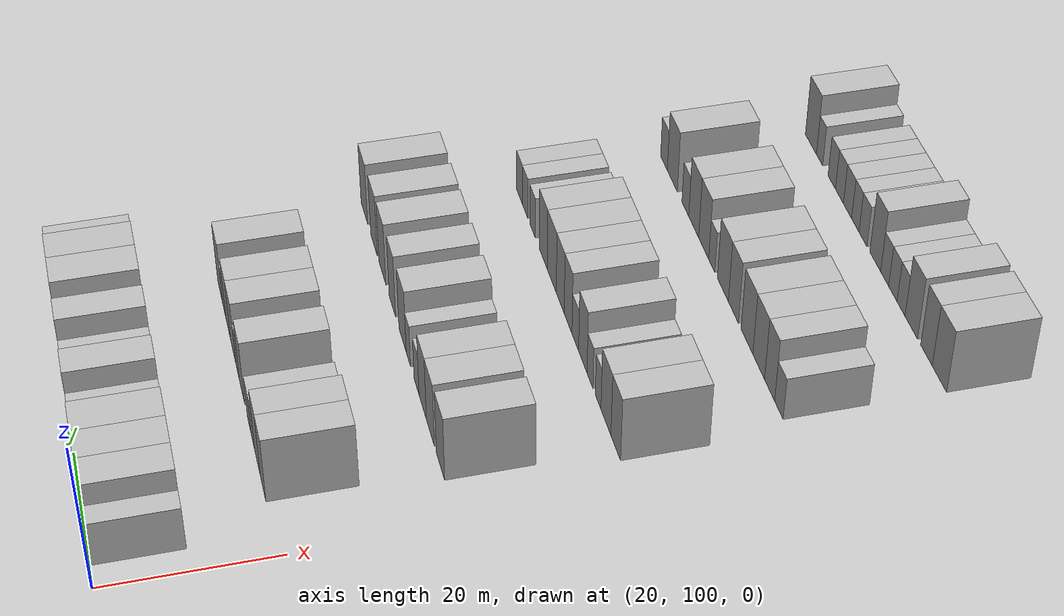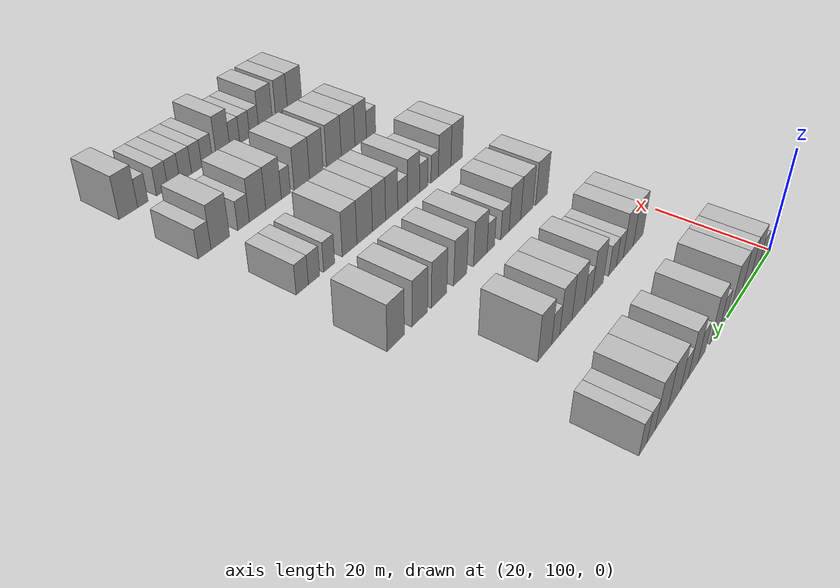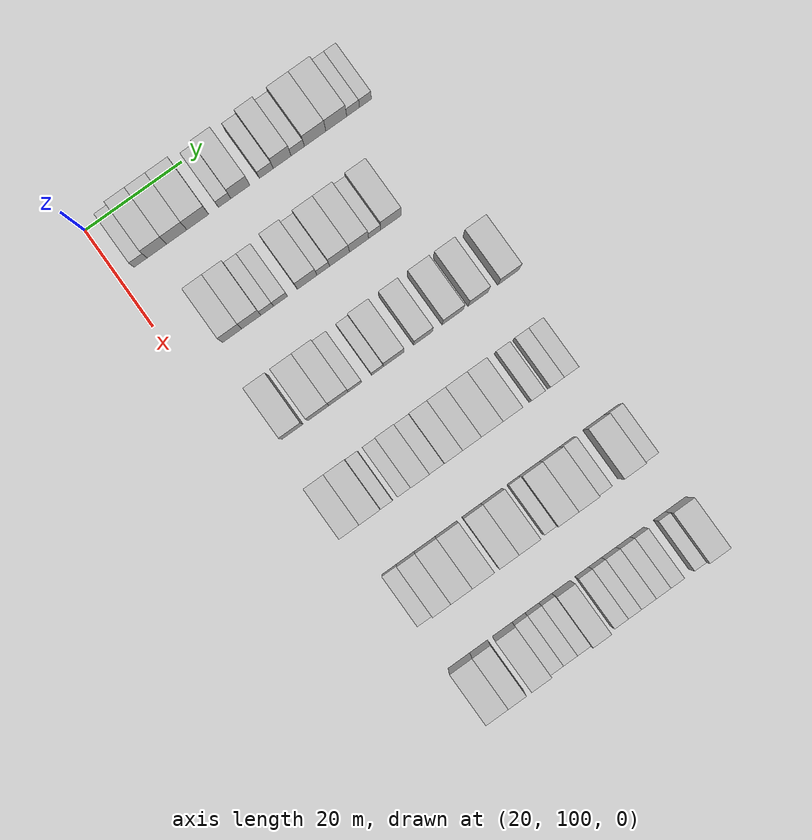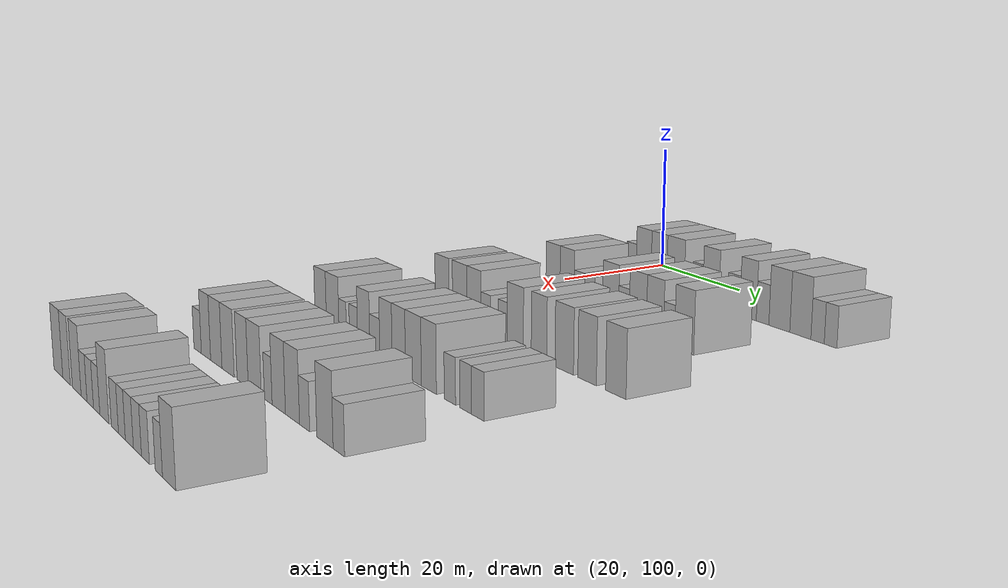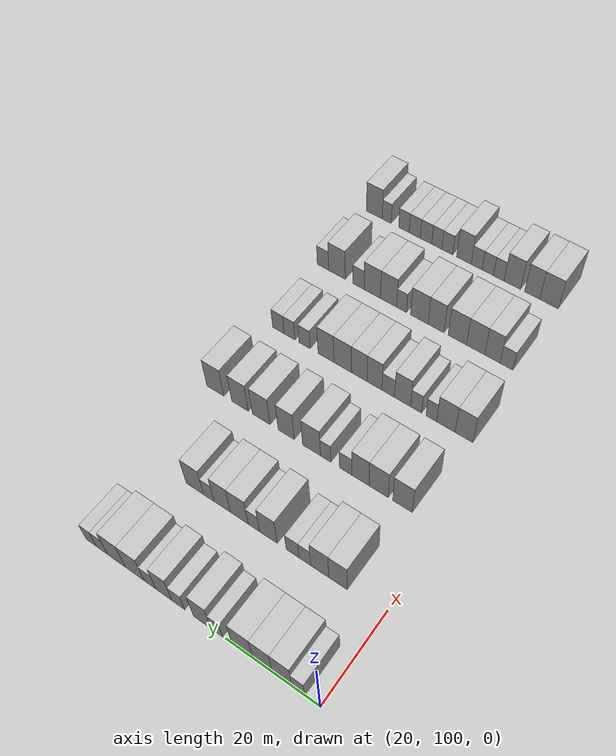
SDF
<sdf version="1.6">
 <world name="default">
  <model name="building_102">
   <static>1</static>
   <pose>25.0000 104.5678 0 0.000000 0.000000 0.000000</pose>
   <link name="link">
    <pose>0 0 3.00 0 0 0</pose>
    <collision name="collision"><geometry><box><size>10.0000 2.6854 6.0000</size></box></geometry></collision>
    <visual name="visual">
     <cast_shadows>0</cast_shadows>
     <geometry><box><size>10.0000 2.6854 6.0000</size></box></geometry>
     <material>
      <script>
       <uri>model://HANNAS_wall/materials/scripts</uri>
       <uri>model://HANNAS_wall/materials/textures</uri>
       <name>vrc/HANNAS_wall</name>
      </script>
     </material>
    </visual>
   </link>
  </model>
  <model name="building_103">
   <static>1</static>
   <pose>25.0000 107.9273 0 0.000000 0.000000 0.000000</pose>
   <link name="link">
    <pose>0 0 4.50 0 0 0</pose>
    <collision name="collision"><geometry><box><size>10.0000 4.0334 9.0000</size></box></geometry></collision>
    <visual name="visual">
     <cast_shadows>0</cast_shadows>
     <geometry><box><size>10.0000 4.0334 9.0000</size></box></geometry>
     <material>
      <script>
       <uri>model://HANNAS_wall/materials/scripts</uri>
       <uri>model://HANNAS_wall/materials/textures</uri>
       <name>vrc/HANNAS_wall</name>
      </script>
     </material>
    </visual>
   </link>
  </model>
  <model name="building_104">
   <static>1</static>
   <pose>25.0000 112.0118 0 0.000000 0.000000 0.000000</pose>
   <link name="link">
    <pose>0 0 4.50 0 0 0</pose>
    <collision name="collision"><geometry><box><size>10.0000 4.1357 9.0000</size></box></geometry></collision>
    <visual name="visual">
     <cast_shadows>0</cast_shadows>
     <geometry><box><size>10.0000 4.1357 9.0000</size></box></geometry>
     <material>
      <script>
       <uri>model://HANNAS_wall/materials/scripts</uri>
       <uri>model://HANNAS_wall/materials/textures</uri>
       <name>vrc/HANNAS_wall</name>
      </script>
     </material>
    </visual>
   </link>
  </model>
  <model name="building_105">
   <static>1</static>
   <pose>25.0000 116.3245 0 0.000000 0.000000 0.000000</pose>
   <link name="link">
    <pose>0 0 4.50 0 0 0</pose>
    <collision name="collision"><geometry><box><size>10.0000 4.4896 9.0000</size></box></geometry></collision>
    <visual name="visual">
     <cast_shadows>0</cast_shadows>
     <geometry><box><size>10.0000 4.4896 9.0000</size></box></geometry>
     <material>
      <script>
       <uri>model://HANNAS_wall/materials/scripts</uri>
       <uri>model://HANNAS_wall/materials/textures</uri>
       <name>vrc/HANNAS_wall</name>
      </script>
     </material>
    </visual>
   </link>
  </model>
  <model name="building_106">
   <static>1</static>
   <pose>25.0000 121.8546 0 0.000000 0.000000 0.000000</pose>
   <link name="link">
    <pose>0 0 3.00 0 0 0</pose>
    <collision name="collision"><geometry><box><size>10.0000 2.5707 6.0000</size></box></geometry></collision>
    <visual name="visual">
     <cast_shadows>0</cast_shadows>
     <geometry><box><size>10.0000 2.5707 6.0000</size></box></geometry>
     <material>
      <script>
       <uri>model://HANNAS_wall/materials/scripts</uri>
       <uri>model://HANNAS_wall/materials/textures</uri>
       <name>vrc/HANNAS_wall</name>
      </script>
     </material>
    </visual>
   </link>
  </model>
  <model name="building_107">
   <static>1</static>
   <pose>25.0000 125.0823 0 0.000000 0.000000 0.000000</pose>
   <link name="link">
    <pose>0 0 4.50 0 0 0</pose>
    <collision name="collision"><geometry><box><size>10.0000 3.8846 9.0000</size></box></geometry></collision>
    <visual name="visual">
     <cast_shadows>0</cast_shadows>
     <geometry><box><size>10.0000 3.8846 9.0000</size></box></geometry>
     <material>
      <script>
       <uri>model://HANNAS_wall/materials/scripts</uri>
       <uri>model://HANNAS_wall/materials/textures</uri>
       <name>vrc/HANNAS_wall</name>
      </script>
     </material>
    </visual>
   </link>
  </model>
  <model name="building_108">
   <static>1</static>
   <pose>25.0000 130.4456 0 0.000000 0.000000 0.000000</pose>
   <link name="link">
    <pose>0 0 3.00 0 0 0</pose>
    <collision name="collision"><geometry><box><size>10.0000 2.8421 6.0000</size></box></geometry></collision>
    <visual name="visual">
     <cast_shadows>0</cast_shadows>
     <geometry><box><size>10.0000 2.8421 6.0000</size></box></geometry>
     <material>
      <script>
       <uri>model://HANNAS_wall/materials/scripts</uri>
       <uri>model://HANNAS_wall/materials/textures</uri>
       <name>vrc/HANNAS_wall</name>
      </script>
     </material>
    </visual>
   </link>
  </model>
  <model name="building_109">
   <static>1</static>
   <pose>25.0000 133.7133 0 0.000000 0.000000 0.000000</pose>
   <link name="link">
    <pose>0 0 4.50 0 0 0</pose>
    <collision name="collision"><geometry><box><size>10.0000 3.6931 9.0000</size></box></geometry></collision>
    <visual name="visual">
     <cast_shadows>0</cast_shadows>
     <geometry><box><size>10.0000 3.6931 9.0000</size></box></geometry>
     <material>
      <script>
       <uri>model://HANNAS_wall/materials/scripts</uri>
       <uri>model://HANNAS_wall/materials/textures</uri>
       <name>vrc/HANNAS_wall</name>
      </script>
     </material>
    </visual>
   </link>
  </model>
  <model name="building_110">
   <static>1</static>
   <pose>25.0000 136.9360 0 0.000000 0.000000 0.000000</pose>
   <link name="link">
    <pose>0 0 3.00 0 0 0</pose>
    <collision name="collision"><geometry><box><size>10.0000 2.7523 6.0000</size></box></geometry></collision>
    <visual name="visual">
     <cast_shadows>0</cast_shadows>
     <geometry><box><size>10.0000 2.7523 6.0000</size></box></geometry>
     <material>
      <script>
       <uri>model://HANNAS_wall/materials/scripts</uri>
       <uri>model://HANNAS_wall/materials/textures</uri>
       <name>vrc/HANNAS_wall</name>
      </script>
     </material>
    </visual>
   </link>
  </model>
  <model name="building_111">
   <static>1</static>
   <pose>25.0000 140.5311 0 0.000000 0.000000 0.000000</pose>
   <link name="link">
    <pose>0 0 4.50 0 0 0</pose>
    <collision name="collision"><geometry><box><size>10.0000 4.4381 9.0000</size></box></geometry></collision>
    <visual name="visual">
     <cast_shadows>0</cast_shadows>
     <geometry><box><size>10.0000 4.4381 9.0000</size></box></geometry>
     <material>
      <script>
       <uri>model://HANNAS_wall/materials/scripts</uri>
       <uri>model://HANNAS_wall/materials/textures</uri>
       <name>vrc/HANNAS_wall</name>
      </script>
     </material>
    </visual>
   </link>
  </model>
  <model name="building_112">
   <static>1</static>
   <pose>25.0000 144.9060 0 0.000000 0.000000 0.000000</pose>
   <link name="link">
    <pose>0 0 4.50 0 0 0</pose>
    <collision name="collision"><geometry><box><size>10.0000 4.3118 9.0000</size></box></geometry></collision>
    <visual name="visual">
     <cast_shadows>0</cast_shadows>
     <geometry><box><size>10.0000 4.3118 9.0000</size></box></geometry>
     <material>
      <script>
       <uri>model://HANNAS_wall/materials/scripts</uri>
       <uri>model://HANNAS_wall/materials/textures</uri>
       <name>vrc/HANNAS_wall</name>
      </script>
     </material>
    </visual>
   </link>
  </model>
  <model name="building_113">
   <static>1</static>
   <pose>25.0000 148.3867 0 0.000000 0.000000 0.000000</pose>
   <link name="link">
    <pose>0 0 3.00 0 0 0</pose>
    <collision name="collision"><geometry><box><size>10.0000 2.6495 6.0000</size></box></geometry></collision>
    <visual name="visual">
     <cast_shadows>0</cast_shadows>
     <geometry><box><size>10.0000 2.6495 6.0000</size></box></geometry>
     <material>
      <script>
       <uri>model://HANNAS_wall/materials/scripts</uri>
       <uri>model://HANNAS_wall/materials/textures</uri>
       <name>vrc/HANNAS_wall</name>
      </script>
     </material>
    </visual>
   </link>
  </model>
  <model name="building_114">
   <static>1</static>
   <pose>25.0000 150.9432 0 0.000000 0.000000 0.000000</pose>
   <link name="link">
    <pose>0 0 3.00 0 0 0</pose>
    <collision name="collision"><geometry><box><size>10.0000 2.4636 6.0000</size></box></geometry></collision>
    <visual name="visual">
     <cast_shadows>0</cast_shadows>
     <geometry><box><size>10.0000 2.4636 6.0000</size></box></geometry>
     <material>
      <script>
       <uri>model://HANNAS_wall/materials/scripts</uri>
       <uri>model://HANNAS_wall/materials/textures</uri>
       <name>vrc/HANNAS_wall</name>
      </script>
     </material>
    </visual>
   </link>
  </model>
  <model name="building_282">
   <static>1</static>
   <pose>44.0000 109.9652 0 0.000000 0.000000 0.000000</pose>
   <link name="link">
    <pose>0 0 4.50 0 0 0</pose>
    <collision name="collision"><geometry><box><size>10.0000 3.9697 9.0000</size></box></geometry></collision>
    <visual name="visual">
     <cast_shadows>0</cast_shadows>
     <geometry><box><size>10.0000 3.9697 9.0000</size></box></geometry>
     <material>
      <script>
       <uri>model://HANNAS_wall/materials/scripts</uri>
       <uri>model://HANNAS_wall/materials/textures</uri>
       <name>vrc/HANNAS_wall</name>
      </script>
     </material>
    </visual>
   </link>
  </model>
  <model name="building_283">
   <static>1</static>
   <pose>44.0000 113.9184 0 0.000000 0.000000 0.000000</pose>
   <link name="link">
    <pose>0 0 4.50 0 0 0</pose>
    <collision name="collision"><geometry><box><size>10.0000 3.9366 9.0000</size></box></geometry></collision>
    <visual name="visual">
     <cast_shadows>0</cast_shadows>
     <geometry><box><size>10.0000 3.9366 9.0000</size></box></geometry>
     <material>
      <script>
       <uri>model://HANNAS_wall/materials/scripts</uri>
       <uri>model://HANNAS_wall/materials/textures</uri>
       <name>vrc/HANNAS_wall</name>
      </script>
     </material>
    </visual>
   </link>
  </model>
  <model name="building_284">
   <static>1</static>
   <pose>44.0000 117.1694 0 0.000000 0.000000 0.000000</pose>
   <link name="link">
    <pose>0 0 3.00 0 0 0</pose>
    <collision name="collision"><geometry><box><size>10.0000 2.5653 6.0000</size></box></geometry></collision>
    <visual name="visual">
     <cast_shadows>0</cast_shadows>
     <geometry><box><size>10.0000 2.5653 6.0000</size></box></geometry>
     <material>
      <script>
       <uri>model://HANNAS_wall/materials/scripts</uri>
       <uri>model://HANNAS_wall/materials/textures</uri>
       <name>vrc/HANNAS_wall</name>
      </script>
     </material>
    </visual>
   </link>
  </model>
  <model name="building_285">
   <static>1</static>
   <pose>44.0000 119.8928 0 0.000000 0.000000 0.000000</pose>
   <link name="link">
    <pose>0 0 3.00 0 0 0</pose>
    <collision name="collision"><geometry><box><size>10.0000 2.8816 6.0000</size></box></geometry></collision>
    <visual name="visual">
     <cast_shadows>0</cast_shadows>
     <geometry><box><size>10.0000 2.8816 6.0000</size></box></geometry>
     <material>
      <script>
       <uri>model://HANNAS_wall/materials/scripts</uri>
       <uri>model://HANNAS_wall/materials/textures</uri>
       <name>vrc/HANNAS_wall</name>
      </script>
     </material>
    </visual>
   </link>
  </model>
  <model name="building_286">
   <static>1</static>
   <pose>44.0000 125.3479 0 0.000000 0.000000 0.000000</pose>
   <link name="link">
    <pose>0 0 4.50 0 0 0</pose>
    <collision name="collision"><geometry><box><size>10.0000 4.0286 9.0000</size></box></geometry></collision>
    <visual name="visual">
     <cast_shadows>0</cast_shadows>
     <geometry><box><size>10.0000 4.0286 9.0000</size></box></geometry>
     <material>
      <script>
       <uri>model://HANNAS_wall/materials/scripts</uri>
       <uri>model://HANNAS_wall/materials/textures</uri>
       <name>vrc/HANNAS_wall</name>
      </script>
     </material>
    </visual>
   </link>
  </model>
  <model name="building_287">
   <static>1</static>
   <pose>44.0000 128.6664 0 0.000000 0.000000 0.000000</pose>
   <link name="link">
    <pose>0 0 3.00 0 0 0</pose>
    <collision name="collision"><geometry><box><size>10.0000 2.6083 6.0000</size></box></geometry></collision>
    <visual name="visual">
     <cast_shadows>0</cast_shadows>
     <geometry><box><size>10.0000 2.6083 6.0000</size></box></geometry>
     <material>
      <script>
       <uri>model://HANNAS_wall/materials/scripts</uri>
       <uri>model://HANNAS_wall/materials/textures</uri>
       <name>vrc/HANNAS_wall</name>
      </script>
     </material>
    </visual>
   </link>
  </model>
  <model name="building_288">
   <static>1</static>
   <pose>44.0000 132.0211 0 0.000000 0.000000 0.000000</pose>
   <link name="link">
    <pose>0 0 4.50 0 0 0</pose>
    <collision name="collision"><geometry><box><size>10.0000 4.1012 9.0000</size></box></geometry></collision>
    <visual name="visual">
     <cast_shadows>0</cast_shadows>
     <geometry><box><size>10.0000 4.1012 9.0000</size></box></geometry>
     <material>
      <script>
       <uri>model://HANNAS_wall/materials/scripts</uri>
       <uri>model://HANNAS_wall/materials/textures</uri>
       <name>vrc/HANNAS_wall</name>
      </script>
     </material>
    </visual>
   </link>
  </model>
  <model name="building_289">
   <static>1</static>
   <pose>44.0000 136.0446 0 0.000000 0.000000 0.000000</pose>
   <link name="link">
    <pose>0 0 4.50 0 0 0</pose>
    <collision name="collision"><geometry><box><size>10.0000 3.9458 9.0000</size></box></geometry></collision>
    <visual name="visual">
     <cast_shadows>0</cast_shadows>
     <geometry><box><size>10.0000 3.9458 9.0000</size></box></geometry>
     <material>
      <script>
       <uri>model://HANNAS_wall/materials/scripts</uri>
       <uri>model://HANNAS_wall/materials/textures</uri>
       <name>vrc/HANNAS_wall</name>
      </script>
     </material>
    </visual>
   </link>
  </model>
  <model name="building_290">
   <static>1</static>
   <pose>44.0000 139.2685 0 0.000000 0.000000 0.000000</pose>
   <link name="link">
    <pose>0 0 3.00 0 0 0</pose>
    <collision name="collision"><geometry><box><size>10.0000 2.5020 6.0000</size></box></geometry></collision>
    <visual name="visual">
     <cast_shadows>0</cast_shadows>
     <geometry><box><size>10.0000 2.5020 6.0000</size></box></geometry>
     <material>
      <script>
       <uri>model://HANNAS_wall/materials/scripts</uri>
       <uri>model://HANNAS_wall/materials/textures</uri>
       <name>vrc/HANNAS_wall</name>
      </script>
     </material>
    </visual>
   </link>
  </model>
  <model name="building_291">
   <static>1</static>
   <pose>44.0000 142.6181 0 0.000000 0.000000 0.000000</pose>
   <link name="link">
    <pose>0 0 4.50 0 0 0</pose>
    <collision name="collision"><geometry><box><size>10.0000 4.1971 9.0000</size></box></geometry></collision>
    <visual name="visual">
     <cast_shadows>0</cast_shadows>
     <geometry><box><size>10.0000 4.1971 9.0000</size></box></geometry>
     <material>
      <script>
       <uri>model://HANNAS_wall/materials/scripts</uri>
       <uri>model://HANNAS_wall/materials/textures</uri>
       <name>vrc/HANNAS_wall</name>
      </script>
     </material>
    </visual>
   </link>
  </model>
  <model name="building_435">
   <static>1</static>
   <pose>63.0000 108.8402 0 0.000000 0.000000 0.000000</pose>
   <link name="link">
    <pose>0 0 4.50 0 0 0</pose>
    <collision name="collision"><geometry><box><size>10.0000 4.3191 9.0000</size></box></geometry></collision>
    <visual name="visual">
     <cast_shadows>0</cast_shadows>
     <geometry><box><size>10.0000 4.3191 9.0000</size></box></geometry>
     <material>
      <script>
       <uri>model://HANNAS_wall/materials/scripts</uri>
       <uri>model://HANNAS_wall/materials/textures</uri>
       <name>vrc/HANNAS_wall</name>
      </script>
     </material>
    </visual>
   </link>
  </model>
  <model name="building_436">
   <static>1</static>
   <pose>63.0000 114.1483 0 0.000000 0.000000 0.000000</pose>
   <link name="link">
    <pose>0 0 4.50 0 0 0</pose>
    <collision name="collision"><geometry><box><size>10.0000 4.2972 9.0000</size></box></geometry></collision>
    <visual name="visual">
     <cast_shadows>0</cast_shadows>
     <geometry><box><size>10.0000 4.2972 9.0000</size></box></geometry>
     <material>
      <script>
       <uri>model://HANNAS_wall/materials/scripts</uri>
       <uri>model://HANNAS_wall/materials/textures</uri>
       <name>vrc/HANNAS_wall</name>
      </script>
     </material>
    </visual>
   </link>
  </model>
  <model name="building_437">
   <static>1</static>
   <pose>63.0000 118.2784 0 0.000000 0.000000 0.000000</pose>
   <link name="link">
    <pose>0 0 4.50 0 0 0</pose>
    <collision name="collision"><geometry><box><size>10.0000 3.9630 9.0000</size></box></geometry></collision>
    <visual name="visual">
     <cast_shadows>0</cast_shadows>
     <geometry><box><size>10.0000 3.9630 9.0000</size></box></geometry>
     <material>
      <script>
       <uri>model://HANNAS_wall/materials/scripts</uri>
       <uri>model://HANNAS_wall/materials/textures</uri>
       <name>vrc/HANNAS_wall</name>
      </script>
     </material>
    </visual>
   </link>
  </model>
  <model name="building_438">
   <static>1</static>
   <pose>63.0000 121.6506 0 0.000000 0.000000 0.000000</pose>
   <link name="link">
    <pose>0 0 3.00 0 0 0</pose>
    <collision name="collision"><geometry><box><size>10.0000 2.7814 6.0000</size></box></geometry></collision>
    <visual name="visual">
     <cast_shadows>0</cast_shadows>
     <geometry><box><size>10.0000 2.7814 6.0000</size></box></geometry>
     <material>
      <script>
       <uri>model://HANNAS_wall/materials/scripts</uri>
       <uri>model://HANNAS_wall/materials/textures</uri>
       <name>vrc/HANNAS_wall</name>
      </script>
     </material>
    </visual>
   </link>
  </model>
  <model name="building_439">
   <static>1</static>
   <pose>63.0000 126.2602 0 0.000000 0.000000 0.000000</pose>
   <link name="link">
    <pose>0 0 3.00 0 0 0</pose>
    <collision name="collision"><geometry><box><size>10.0000 2.4378 6.0000</size></box></geometry></collision>
    <visual name="visual">
     <cast_shadows>0</cast_shadows>
     <geometry><box><size>10.0000 2.4378 6.0000</size></box></geometry>
     <material>
      <script>
       <uri>model://HANNAS_wall/materials/scripts</uri>
       <uri>model://HANNAS_wall/materials/textures</uri>
       <name>vrc/HANNAS_wall</name>
      </script>
     </material>
    </visual>
   </link>
  </model>
  <model name="building_440">
   <static>1</static>
   <pose>63.0000 129.5867 0 0.000000 0.000000 0.000000</pose>
   <link name="link">
    <pose>0 0 4.50 0 0 0</pose>
    <collision name="collision"><geometry><box><size>10.0000 4.2151 9.0000</size></box></geometry></collision>
    <visual name="visual">
     <cast_shadows>0</cast_shadows>
     <geometry><box><size>10.0000 4.2151 9.0000</size></box></geometry>
     <material>
      <script>
       <uri>model://HANNAS_wall/materials/scripts</uri>
       <uri>model://HANNAS_wall/materials/textures</uri>
       <name>vrc/HANNAS_wall</name>
      </script>
     </material>
    </visual>
   </link>
  </model>
  <model name="building_441">
   <static>1</static>
   <pose>63.0000 135.6236 0 0.000000 0.000000 0.000000</pose>
   <link name="link">
    <pose>0 0 4.50 0 0 0</pose>
    <collision name="collision"><geometry><box><size>10.0000 3.8587 9.0000</size></box></geometry></collision>
    <visual name="visual">
     <cast_shadows>0</cast_shadows>
     <geometry><box><size>10.0000 3.8587 9.0000</size></box></geometry>
     <material>
      <script>
       <uri>model://HANNAS_wall/materials/scripts</uri>
       <uri>model://HANNAS_wall/materials/textures</uri>
       <name>vrc/HANNAS_wall</name>
      </script>
     </material>
    </visual>
   </link>
  </model>
  <model name="building_442">
   <static>1</static>
   <pose>63.0000 141.7271 0 0.000000 0.000000 0.000000</pose>
   <link name="link">
    <pose>0 0 4.50 0 0 0</pose>
    <collision name="collision"><geometry><box><size>10.0000 4.3483 9.0000</size></box></geometry></collision>
    <visual name="visual">
     <cast_shadows>0</cast_shadows>
     <geometry><box><size>10.0000 4.3483 9.0000</size></box></geometry>
     <material>
      <script>
       <uri>model://HANNAS_wall/materials/scripts</uri>
       <uri>model://HANNAS_wall/materials/textures</uri>
       <name>vrc/HANNAS_wall</name>
      </script>
     </material>
    </visual>
   </link>
  </model>
  <model name="building_443">
   <static>1</static>
   <pose>63.0000 146.9768 0 0.000000 0.000000 0.000000</pose>
   <link name="link">
    <pose>0 0 4.50 0 0 0</pose>
    <collision name="collision"><geometry><box><size>10.0000 4.1511 9.0000</size></box></geometry></collision>
    <visual name="visual">
     <cast_shadows>0</cast_shadows>
     <geometry><box><size>10.0000 4.1511 9.0000</size></box></geometry>
     <material>
      <script>
       <uri>model://HANNAS_wall/materials/scripts</uri>
       <uri>model://HANNAS_wall/materials/textures</uri>
       <name>vrc/HANNAS_wall</name>
      </script>
     </material>
    </visual>
   </link>
  </model>
  <model name="building_444">
   <static>1</static>
   <pose>63.0000 153.2112 0 0.000000 0.000000 0.000000</pose>
   <link name="link">
    <pose>0 0 4.50 0 0 0</pose>
    <collision name="collision"><geometry><box><size>10.0000 4.3177 9.0000</size></box></geometry></collision>
    <visual name="visual">
     <cast_shadows>0</cast_shadows>
     <geometry><box><size>10.0000 4.3177 9.0000</size></box></geometry>
     <material>
      <script>
       <uri>model://HANNAS_wall/materials/scripts</uri>
       <uri>model://HANNAS_wall/materials/textures</uri>
       <name>vrc/HANNAS_wall</name>
      </script>
     </material>
    </visual>
   </link>
  </model>
  <model name="building_610">
   <static>1</static>
   <pose>82.0000 107.1392 0 0.000000 0.000000 0.000000</pose>
   <link name="link">
    <pose>0 0 4.50 0 0 0</pose>
    <collision name="collision"><geometry><box><size>10.0000 3.9858 9.0000</size></box></geometry></collision>
    <visual name="visual">
     <cast_shadows>0</cast_shadows>
     <geometry><box><size>10.0000 3.9858 9.0000</size></box></geometry>
     <material>
      <script>
       <uri>model://HANNAS_wall/materials/scripts</uri>
       <uri>model://HANNAS_wall/materials/textures</uri>
       <name>vrc/HANNAS_wall</name>
      </script>
     </material>
    </visual>
   </link>
  </model>
  <model name="building_611">
   <static>1</static>
   <pose>82.0000 111.2429 0 0.000000 0.000000 0.000000</pose>
   <link name="link">
    <pose>0 0 4.50 0 0 0</pose>
    <collision name="collision"><geometry><box><size>10.0000 4.2218 9.0000</size></box></geometry></collision>
    <visual name="visual">
     <cast_shadows>0</cast_shadows>
     <geometry><box><size>10.0000 4.2218 9.0000</size></box></geometry>
     <material>
      <script>
       <uri>model://HANNAS_wall/materials/scripts</uri>
       <uri>model://HANNAS_wall/materials/textures</uri>
       <name>vrc/HANNAS_wall</name>
      </script>
     </material>
    </visual>
   </link>
  </model>
  <model name="building_612">
   <static>1</static>
   <pose>82.0000 114.5690 0 0.000000 0.000000 0.000000</pose>
   <link name="link">
    <pose>0 0 3.00 0 0 0</pose>
    <collision name="collision"><geometry><box><size>10.0000 2.4304 6.0000</size></box></geometry></collision>
    <visual name="visual">
     <cast_shadows>0</cast_shadows>
     <geometry><box><size>10.0000 2.4304 6.0000</size></box></geometry>
     <material>
      <script>
       <uri>model://HANNAS_wall/materials/scripts</uri>
       <uri>model://HANNAS_wall/materials/textures</uri>
       <name>vrc/HANNAS_wall</name>
      </script>
     </material>
    </visual>
   </link>
  </model>
  <model name="building_613">
   <static>1</static>
   <pose>82.0000 118.0830 0 0.000000 0.000000 0.000000</pose>
   <link name="link">
    <pose>0 0 3.00 0 0 0</pose>
    <collision name="collision"><geometry><box><size>10.0000 2.5975 6.0000</size></box></geometry></collision>
    <visual name="visual">
     <cast_shadows>0</cast_shadows>
     <geometry><box><size>10.0000 2.5975 6.0000</size></box></geometry>
     <material>
      <script>
       <uri>model://HANNAS_wall/materials/scripts</uri>
       <uri>model://HANNAS_wall/materials/textures</uri>
       <name>vrc/HANNAS_wall</name>
      </script>
     </material>
    </visual>
   </link>
  </model>
  <model name="building_614">
   <static>1</static>
   <pose>82.0000 121.2739 0 0.000000 0.000000 0.000000</pose>
   <link name="link">
    <pose>0 0 4.50 0 0 0</pose>
    <collision name="collision"><geometry><box><size>10.0000 3.7844 9.0000</size></box></geometry></collision>
    <visual name="visual">
     <cast_shadows>0</cast_shadows>
     <geometry><box><size>10.0000 3.7844 9.0000</size></box></geometry>
     <material>
      <script>
       <uri>model://HANNAS_wall/materials/scripts</uri>
       <uri>model://HANNAS_wall/materials/textures</uri>
       <name>vrc/HANNAS_wall</name>
      </script>
     </material>
    </visual>
   </link>
  </model>
  <model name="building_615">
   <static>1</static>
   <pose>82.0000 124.6626 0 0.000000 0.000000 0.000000</pose>
   <link name="link">
    <pose>0 0 3.00 0 0 0</pose>
    <collision name="collision"><geometry><box><size>10.0000 2.9929 6.0000</size></box></geometry></collision>
    <visual name="visual">
     <cast_shadows>0</cast_shadows>
     <geometry><box><size>10.0000 2.9929 6.0000</size></box></geometry>
     <material>
      <script>
       <uri>model://HANNAS_wall/materials/scripts</uri>
       <uri>model://HANNAS_wall/materials/textures</uri>
       <name>vrc/HANNAS_wall</name>
      </script>
     </material>
    </visual>
   </link>
  </model>
  <model name="building_616">
   <static>1</static>
   <pose>82.0000 127.9609 0 0.000000 0.000000 0.000000</pose>
   <link name="link">
    <pose>0 0 4.50 0 0 0</pose>
    <collision name="collision"><geometry><box><size>10.0000 3.6039 9.0000</size></box></geometry></collision>
    <visual name="visual">
     <cast_shadows>0</cast_shadows>
     <geometry><box><size>10.0000 3.6039 9.0000</size></box></geometry>
     <material>
      <script>
       <uri>model://HANNAS_wall/materials/scripts</uri>
       <uri>model://HANNAS_wall/materials/textures</uri>
       <name>vrc/HANNAS_wall</name>
      </script>
     </material>
    </visual>
   </link>
  </model>
  <model name="building_617">
   <static>1</static>
   <pose>82.0000 131.6417 0 0.000000 0.000000 0.000000</pose>
   <link name="link">
    <pose>0 0 4.50 0 0 0</pose>
    <collision name="collision"><geometry><box><size>10.0000 3.7576 9.0000</size></box></geometry></collision>
    <visual name="visual">
     <cast_shadows>0</cast_shadows>
     <geometry><box><size>10.0000 3.7576 9.0000</size></box></geometry>
     <material>
      <script>
       <uri>model://HANNAS_wall/materials/scripts</uri>
       <uri>model://HANNAS_wall/materials/textures</uri>
       <name>vrc/HANNAS_wall</name>
      </script>
     </material>
    </visual>
   </link>
  </model>
  <model name="building_618">
   <static>1</static>
   <pose>82.0000 135.6814 0 0.000000 0.000000 0.000000</pose>
   <link name="link">
    <pose>0 0 4.50 0 0 0</pose>
    <collision name="collision"><geometry><box><size>10.0000 4.3218 9.0000</size></box></geometry></collision>
    <visual name="visual">
     <cast_shadows>0</cast_shadows>
     <geometry><box><size>10.0000 4.3218 9.0000</size></box></geometry>
     <material>
      <script>
       <uri>model://HANNAS_wall/materials/scripts</uri>
       <uri>model://HANNAS_wall/materials/textures</uri>
       <name>vrc/HANNAS_wall</name>
      </script>
     </material>
    </visual>
   </link>
  </model>
  <model name="building_619">
   <static>1</static>
   <pose>82.0000 139.8212 0 0.000000 0.000000 0.000000</pose>
   <link name="link">
    <pose>0 0 4.50 0 0 0</pose>
    <collision name="collision"><geometry><box><size>10.0000 3.9577 9.0000</size></box></geometry></collision>
    <visual name="visual">
     <cast_shadows>0</cast_shadows>
     <geometry><box><size>10.0000 3.9577 9.0000</size></box></geometry>
     <material>
      <script>
       <uri>model://HANNAS_wall/materials/scripts</uri>
       <uri>model://HANNAS_wall/materials/textures</uri>
       <name>vrc/HANNAS_wall</name>
      </script>
     </material>
    </visual>
   </link>
  </model>
  <model name="building_620">
   <static>1</static>
   <pose>82.0000 145.2170 0 0.000000 0.000000 0.000000</pose>
   <link name="link">
    <pose>0 0 3.00 0 0 0</pose>
    <collision name="collision"><geometry><box><size>10.0000 2.8338 6.0000</size></box></geometry></collision>
    <visual name="visual">
     <cast_shadows>0</cast_shadows>
     <geometry><box><size>10.0000 2.8338 6.0000</size></box></geometry>
     <material>
      <script>
       <uri>model://HANNAS_wall/materials/scripts</uri>
       <uri>model://HANNAS_wall/materials/textures</uri>
       <name>vrc/HANNAS_wall</name>
      </script>
     </material>
    </visual>
   </link>
  </model>
  <model name="building_621">
   <static>1</static>
   <pose>82.0000 149.0356 0 0.000000 0.000000 0.000000</pose>
   <link name="link">
    <pose>0 0 3.00 0 0 0</pose>
    <collision name="collision"><geometry><box><size>10.0000 2.8034 6.0000</size></box></geometry></collision>
    <visual name="visual">
     <cast_shadows>0</cast_shadows>
     <geometry><box><size>10.0000 2.8034 6.0000</size></box></geometry>
     <material>
      <script>
       <uri>model://HANNAS_wall/materials/scripts</uri>
       <uri>model://HANNAS_wall/materials/textures</uri>
       <name>vrc/HANNAS_wall</name>
      </script>
     </material>
    </visual>
   </link>
  </model>
  <model name="building_622">
   <static>1</static>
   <pose>82.0000 151.9226 0 0.000000 0.000000 0.000000</pose>
   <link name="link">
    <pose>0 0 3.00 0 0 0</pose>
    <collision name="collision"><geometry><box><size>10.0000 2.9707 6.0000</size></box></geometry></collision>
    <visual name="visual">
     <cast_shadows>0</cast_shadows>
     <geometry><box><size>10.0000 2.9707 6.0000</size></box></geometry>
     <material>
      <script>
       <uri>model://HANNAS_wall/materials/scripts</uri>
       <uri>model://HANNAS_wall/materials/textures</uri>
       <name>vrc/HANNAS_wall</name>
      </script>
     </material>
    </visual>
   </link>
  </model>
  <model name="building_787">
   <static>1</static>
   <pose>101.0000 108.6226 0 0.000000 0.000000 0.000000</pose>
   <link name="link">
    <pose>0 0 3.00 0 0 0</pose>
    <collision name="collision"><geometry><box><size>10.0000 2.9806 6.0000</size></box></geometry></collision>
    <visual name="visual">
     <cast_shadows>0</cast_shadows>
     <geometry><box><size>10.0000 2.9806 6.0000</size></box></geometry>
     <material>
      <script>
       <uri>model://HANNAS_wall/materials/scripts</uri>
       <uri>model://HANNAS_wall/materials/textures</uri>
       <name>vrc/HANNAS_wall</name>
      </script>
     </material>
    </visual>
   </link>
  </model>
  <model name="building_788">
   <static>1</static>
   <pose>101.0000 111.9260 0 0.000000 0.000000 0.000000</pose>
   <link name="link">
    <pose>0 0 4.50 0 0 0</pose>
    <collision name="collision"><geometry><box><size>10.0000 3.6262 9.0000</size></box></geometry></collision>
    <visual name="visual">
     <cast_shadows>0</cast_shadows>
     <geometry><box><size>10.0000 3.6262 9.0000</size></box></geometry>
     <material>
      <script>
       <uri>model://HANNAS_wall/materials/scripts</uri>
       <uri>model://HANNAS_wall/materials/textures</uri>
       <name>vrc/HANNAS_wall</name>
      </script>
     </material>
    </visual>
   </link>
  </model>
  <model name="building_789">
   <static>1</static>
   <pose>101.0000 115.8783 0 0.000000 0.000000 0.000000</pose>
   <link name="link">
    <pose>0 0 4.50 0 0 0</pose>
    <collision name="collision"><geometry><box><size>10.0000 4.2783 9.0000</size></box></geometry></collision>
    <visual name="visual">
     <cast_shadows>0</cast_shadows>
     <geometry><box><size>10.0000 4.2783 9.0000</size></box></geometry>
     <material>
      <script>
       <uri>model://HANNAS_wall/materials/scripts</uri>
       <uri>model://HANNAS_wall/materials/textures</uri>
       <name>vrc/HANNAS_wall</name>
      </script>
     </material>
    </visual>
   </link>
  </model>
  <model name="building_790">
   <static>1</static>
   <pose>101.0000 120.2354 0 0.000000 0.000000 0.000000</pose>
   <link name="link">
    <pose>0 0 4.50 0 0 0</pose>
    <collision name="collision"><geometry><box><size>10.0000 4.4359 9.0000</size></box></geometry></collision>
    <visual name="visual">
     <cast_shadows>0</cast_shadows>
     <geometry><box><size>10.0000 4.4359 9.0000</size></box></geometry>
     <material>
      <script>
       <uri>model://HANNAS_wall/materials/scripts</uri>
       <uri>model://HANNAS_wall/materials/textures</uri>
       <name>vrc/HANNAS_wall</name>
      </script>
     </material>
    </visual>
   </link>
  </model>
  <model name="building_791">
   <static>1</static>
   <pose>101.0000 125.3936 0 0.000000 0.000000 0.000000</pose>
   <link name="link">
    <pose>0 0 4.50 0 0 0</pose>
    <collision name="collision"><geometry><box><size>10.0000 3.8805 9.0000</size></box></geometry></collision>
    <visual name="visual">
     <cast_shadows>0</cast_shadows>
     <geometry><box><size>10.0000 3.8805 9.0000</size></box></geometry>
     <material>
      <script>
       <uri>model://HANNAS_wall/materials/scripts</uri>
       <uri>model://HANNAS_wall/materials/textures</uri>
       <name>vrc/HANNAS_wall</name>
      </script>
     </material>
    </visual>
   </link>
  </model>
  <model name="building_792">
   <static>1</static>
   <pose>101.0000 129.5120 0 0.000000 0.000000 0.000000</pose>
   <link name="link">
    <pose>0 0 4.50 0 0 0</pose>
    <collision name="collision"><geometry><box><size>10.0000 4.3564 9.0000</size></box></geometry></collision>
    <visual name="visual">
     <cast_shadows>0</cast_shadows>
     <geometry><box><size>10.0000 4.3564 9.0000</size></box></geometry>
     <material>
      <script>
       <uri>model://HANNAS_wall/materials/scripts</uri>
       <uri>model://HANNAS_wall/materials/textures</uri>
       <name>vrc/HANNAS_wall</name>
      </script>
     </material>
    </visual>
   </link>
  </model>
  <model name="building_793">
   <static>1</static>
   <pose>101.0000 133.9229 0 0.000000 0.000000 0.000000</pose>
   <link name="link">
    <pose>0 0 3.00 0 0 0</pose>
    <collision name="collision"><geometry><box><size>10.0000 2.4652 6.0000</size></box></geometry></collision>
    <visual name="visual">
     <cast_shadows>0</cast_shadows>
     <geometry><box><size>10.0000 2.4652 6.0000</size></box></geometry>
     <material>
      <script>
       <uri>model://HANNAS_wall/materials/scripts</uri>
       <uri>model://HANNAS_wall/materials/textures</uri>
       <name>vrc/HANNAS_wall</name>
      </script>
     </material>
    </visual>
   </link>
  </model>
  <model name="building_794">
   <static>1</static>
   <pose>101.0000 137.2158 0 0.000000 0.000000 0.000000</pose>
   <link name="link">
    <pose>0 0 4.50 0 0 0</pose>
    <collision name="collision"><geometry><box><size>10.0000 4.1206 9.0000</size></box></geometry></collision>
    <visual name="visual">
     <cast_shadows>0</cast_shadows>
     <geometry><box><size>10.0000 4.1206 9.0000</size></box></geometry>
     <material>
      <script>
       <uri>model://HANNAS_wall/materials/scripts</uri>
       <uri>model://HANNAS_wall/materials/textures</uri>
       <name>vrc/HANNAS_wall</name>
      </script>
     </material>
    </visual>
   </link>
  </model>
  <model name="building_795">
   <static>1</static>
   <pose>101.0000 141.3682 0 0.000000 0.000000 0.000000</pose>
   <link name="link">
    <pose>0 0 4.50 0 0 0</pose>
    <collision name="collision"><geometry><box><size>10.0000 4.1843 9.0000</size></box></geometry></collision>
    <visual name="visual">
     <cast_shadows>0</cast_shadows>
     <geometry><box><size>10.0000 4.1843 9.0000</size></box></geometry>
     <material>
      <script>
       <uri>model://HANNAS_wall/materials/scripts</uri>
       <uri>model://HANNAS_wall/materials/textures</uri>
       <name>vrc/HANNAS_wall</name>
      </script>
     </material>
    </visual>
   </link>
  </model>
  <model name="building_796">
   <static>1</static>
   <pose>101.0000 144.9089 0 0.000000 0.000000 0.000000</pose>
   <link name="link">
    <pose>0 0 3.00 0 0 0</pose>
    <collision name="collision"><geometry><box><size>10.0000 2.8972 6.0000</size></box></geometry></collision>
    <visual name="visual">
     <cast_shadows>0</cast_shadows>
     <geometry><box><size>10.0000 2.8972 6.0000</size></box></geometry>
     <material>
      <script>
       <uri>model://HANNAS_wall/materials/scripts</uri>
       <uri>model://HANNAS_wall/materials/textures</uri>
       <name>vrc/HANNAS_wall</name>
      </script>
     </material>
    </visual>
   </link>
  </model>
  <model name="building_797">
   <static>1</static>
   <pose>101.0000 150.5562 0 0.000000 0.000000 0.000000</pose>
   <link name="link">
    <pose>0 0 4.50 0 0 0</pose>
    <collision name="collision"><geometry><box><size>10.0000 4.3974 9.0000</size></box></geometry></collision>
    <visual name="visual">
     <cast_shadows>0</cast_shadows>
     <geometry><box><size>10.0000 4.3974 9.0000</size></box></geometry>
     <material>
      <script>
       <uri>model://HANNAS_wall/materials/scripts</uri>
       <uri>model://HANNAS_wall/materials/textures</uri>
       <name>vrc/HANNAS_wall</name>
      </script>
     </material>
    </visual>
   </link>
  </model>
  <model name="building_798">
   <static>1</static>
   <pose>101.0000 154.2519 0 0.000000 0.000000 0.000000</pose>
   <link name="link">
    <pose>0 0 3.00 0 0 0</pose>
    <collision name="collision"><geometry><box><size>10.0000 2.9939 6.0000</size></box></geometry></collision>
    <visual name="visual">
     <cast_shadows>0</cast_shadows>
     <geometry><box><size>10.0000 2.9939 6.0000</size></box></geometry>
     <material>
      <script>
       <uri>model://HANNAS_wall/materials/scripts</uri>
       <uri>model://HANNAS_wall/materials/textures</uri>
       <name>vrc/HANNAS_wall</name>
      </script>
     </material>
    </visual>
   </link>
  </model>
  <model name="building_949">
   <static>1</static>
   <pose>120.0000 109.2276 0 0.000000 0.000000 0.000000</pose>
   <link name="link">
    <pose>0 0 4.50 0 0 0</pose>
    <collision name="collision"><geometry><box><size>10.0000 4.4521 9.0000</size></box></geometry></collision>
    <visual name="visual">
     <cast_shadows>0</cast_shadows>
     <geometry><box><size>10.0000 4.4521 9.0000</size></box></geometry>
     <material>
      <script>
       <uri>model://HANNAS_wall/materials/scripts</uri>
       <uri>model://HANNAS_wall/materials/textures</uri>
       <name>vrc/HANNAS_wall</name>
      </script>
     </material>
    </visual>
   </link>
  </model>
  <model name="building_950">
   <static>1</static>
   <pose>120.0000 113.2665 0 0.000000 0.000000 0.000000</pose>
   <link name="link">
    <pose>0 0 4.50 0 0 0</pose>
    <collision name="collision"><geometry><box><size>10.0000 3.6255 9.0000</size></box></geometry></collision>
    <visual name="visual">
     <cast_shadows>0</cast_shadows>
     <geometry><box><size>10.0000 3.6255 9.0000</size></box></geometry>
     <material>
      <script>
       <uri>model://HANNAS_wall/materials/scripts</uri>
       <uri>model://HANNAS_wall/materials/textures</uri>
       <name>vrc/HANNAS_wall</name>
      </script>
     </material>
    </visual>
   </link>
  </model>
  <model name="building_951">
   <static>1</static>
   <pose>120.0000 118.0970 0 0.000000 0.000000 0.000000</pose>
   <link name="link">
    <pose>0 0 4.50 0 0 0</pose>
    <collision name="collision"><geometry><box><size>10.0000 4.0354 9.0000</size></box></geometry></collision>
    <visual name="visual">
     <cast_shadows>0</cast_shadows>
     <geometry><box><size>10.0000 4.0354 9.0000</size></box></geometry>
     <material>
      <script>
       <uri>model://HANNAS_wall/materials/scripts</uri>
       <uri>model://HANNAS_wall/materials/textures</uri>
       <name>vrc/HANNAS_wall</name>
      </script>
     </material>
    </visual>
   </link>
  </model>
  <model name="building_952">
   <static>1</static>
   <pose>120.0000 121.4365 0 0.000000 0.000000 0.000000</pose>
   <link name="link">
    <pose>0 0 3.00 0 0 0</pose>
    <collision name="collision"><geometry><box><size>10.0000 2.6437 6.0000</size></box></geometry></collision>
    <visual name="visual">
     <cast_shadows>0</cast_shadows>
     <geometry><box><size>10.0000 2.6437 6.0000</size></box></geometry>
     <material>
      <script>
       <uri>model://HANNAS_wall/materials/scripts</uri>
       <uri>model://HANNAS_wall/materials/textures</uri>
       <name>vrc/HANNAS_wall</name>
      </script>
     </material>
    </visual>
   </link>
  </model>
  <model name="building_953">
   <static>1</static>
   <pose>120.0000 124.1701 0 0.000000 0.000000 0.000000</pose>
   <link name="link">
    <pose>0 0 3.00 0 0 0</pose>
    <collision name="collision"><geometry><box><size>10.0000 2.8235 6.0000</size></box></geometry></collision>
    <visual name="visual">
     <cast_shadows>0</cast_shadows>
     <geometry><box><size>10.0000 2.8235 6.0000</size></box></geometry>
     <material>
      <script>
       <uri>model://HANNAS_wall/materials/scripts</uri>
       <uri>model://HANNAS_wall/materials/textures</uri>
       <name>vrc/HANNAS_wall</name>
      </script>
     </material>
    </visual>
   </link>
  </model>
  <model name="building_954">
   <static>1</static>
   <pose>120.0000 126.9334 0 0.000000 0.000000 0.000000</pose>
   <link name="link">
    <pose>0 0 3.00 0 0 0</pose>
    <collision name="collision"><geometry><box><size>10.0000 2.7030 6.0000</size></box></geometry></collision>
    <visual name="visual">
     <cast_shadows>0</cast_shadows>
     <geometry><box><size>10.0000 2.7030 6.0000</size></box></geometry>
     <material>
      <script>
       <uri>model://HANNAS_wall/materials/scripts</uri>
       <uri>model://HANNAS_wall/materials/textures</uri>
       <name>vrc/HANNAS_wall</name>
      </script>
     </material>
    </visual>
   </link>
  </model>
  <model name="building_955">
   <static>1</static>
   <pose>120.0000 130.1431 0 0.000000 0.000000 0.000000</pose>
   <link name="link">
    <pose>0 0 4.50 0 0 0</pose>
    <collision name="collision"><geometry><box><size>10.0000 3.7164 9.0000</size></box></geometry></collision>
    <visual name="visual">
     <cast_shadows>0</cast_shadows>
     <geometry><box><size>10.0000 3.7164 9.0000</size></box></geometry>
     <material>
      <script>
       <uri>model://HANNAS_wall/materials/scripts</uri>
       <uri>model://HANNAS_wall/materials/textures</uri>
       <name>vrc/HANNAS_wall</name>
      </script>
     </material>
    </visual>
   </link>
  </model>
  <model name="building_956">
   <static>1</static>
   <pose>120.0000 134.4007 0 0.000000 0.000000 0.000000</pose>
   <link name="link">
    <pose>0 0 3.00 0 0 0</pose>
    <collision name="collision"><geometry><box><size>10.0000 2.7988 6.0000</size></box></geometry></collision>
    <visual name="visual">
     <cast_shadows>0</cast_shadows>
     <geometry><box><size>10.0000 2.7988 6.0000</size></box></geometry>
     <material>
      <script>
       <uri>model://HANNAS_wall/materials/scripts</uri>
       <uri>model://HANNAS_wall/materials/textures</uri>
       <name>vrc/HANNAS_wall</name>
      </script>
     </material>
    </visual>
   </link>
  </model>
  <model name="building_957">
   <static>1</static>
   <pose>120.0000 137.1230 0 0.000000 0.000000 0.000000</pose>
   <link name="link">
    <pose>0 0 3.00 0 0 0</pose>
    <collision name="collision"><geometry><box><size>10.0000 2.6460 6.0000</size></box></geometry></collision>
    <visual name="visual">
     <cast_shadows>0</cast_shadows>
     <geometry><box><size>10.0000 2.6460 6.0000</size></box></geometry>
     <material>
      <script>
       <uri>model://HANNAS_wall/materials/scripts</uri>
       <uri>model://HANNAS_wall/materials/textures</uri>
       <name>vrc/HANNAS_wall</name>
      </script>
     </material>
    </visual>
   </link>
  </model>
  <model name="building_958">
   <static>1</static>
   <pose>120.0000 139.9397 0 0.000000 0.000000 0.000000</pose>
   <link name="link">
    <pose>0 0 3.00 0 0 0</pose>
    <collision name="collision"><geometry><box><size>10.0000 2.9873 6.0000</size></box></geometry></collision>
    <visual name="visual">
     <cast_shadows>0</cast_shadows>
     <geometry><box><size>10.0000 2.9873 6.0000</size></box></geometry>
     <material>
      <script>
       <uri>model://HANNAS_wall/materials/scripts</uri>
       <uri>model://HANNAS_wall/materials/textures</uri>
       <name>vrc/HANNAS_wall</name>
      </script>
     </material>
    </visual>
   </link>
  </model>
  <model name="building_959">
   <static>1</static>
   <pose>120.0000 142.8987 0 0.000000 0.000000 0.000000</pose>
   <link name="link">
    <pose>0 0 3.00 0 0 0</pose>
    <collision name="collision"><geometry><box><size>10.0000 2.9306 6.0000</size></box></geometry></collision>
    <visual name="visual">
     <cast_shadows>0</cast_shadows>
     <geometry><box><size>10.0000 2.9306 6.0000</size></box></geometry>
     <material>
      <script>
       <uri>model://HANNAS_wall/materials/scripts</uri>
       <uri>model://HANNAS_wall/materials/textures</uri>
       <name>vrc/HANNAS_wall</name>
      </script>
     </material>
    </visual>
   </link>
  </model>
  <model name="building_960">
   <static>1</static>
   <pose>120.0000 145.7458 0 0.000000 0.000000 0.000000</pose>
   <link name="link">
    <pose>0 0 3.00 0 0 0</pose>
    <collision name="collision"><geometry><box><size>10.0000 2.7637 6.0000</size></box></geometry></collision>
    <visual name="visual">
     <cast_shadows>0</cast_shadows>
     <geometry><box><size>10.0000 2.7637 6.0000</size></box></geometry>
     <material>
      <script>
       <uri>model://HANNAS_wall/materials/scripts</uri>
       <uri>model://HANNAS_wall/materials/textures</uri>
       <name>vrc/HANNAS_wall</name>
      </script>
     </material>
    </visual>
   </link>
  </model>
  <model name="building_961">
   <static>1</static>
   <pose>120.0000 150.3341 0 0.000000 0.000000 0.000000</pose>
   <link name="link">
    <pose>0 0 3.00 0 0 0</pose>
    <collision name="collision"><geometry><box><size>10.0000 2.4128 6.0000</size></box></geometry></collision>
    <visual name="visual">
     <cast_shadows>0</cast_shadows>
     <geometry><box><size>10.0000 2.4128 6.0000</size></box></geometry>
     <material>
      <script>
       <uri>model://HANNAS_wall/materials/scripts</uri>
       <uri>model://HANNAS_wall/materials/textures</uri>
       <name>vrc/HANNAS_wall</name>
      </script>
     </material>
    </visual>
   </link>
  </model>
  <model name="building_962">
   <static>1</static>
   <pose>120.0000 153.6759 0 0.000000 0.000000 0.000000</pose>
   <link name="link">
    <pose>0 0 4.50 0 0 0</pose>
    <collision name="collision"><geometry><box><size>10.0000 4.2709 9.0000</size></box></geometry></collision>
    <visual name="visual">
     <cast_shadows>0</cast_shadows>
     <geometry><box><size>10.0000 4.2709 9.0000</size></box></geometry>
     <material>
      <script>
       <uri>model://HANNAS_wall/materials/scripts</uri>
       <uri>model://HANNAS_wall/materials/textures</uri>
       <name>vrc/HANNAS_wall</name>
      </script>
     </material>
    </visual>
   </link>
  </model>
 </world>
</sdf>
